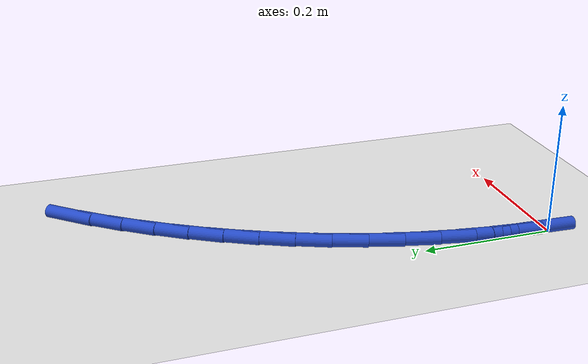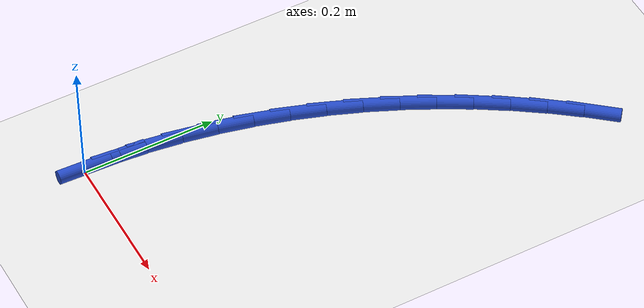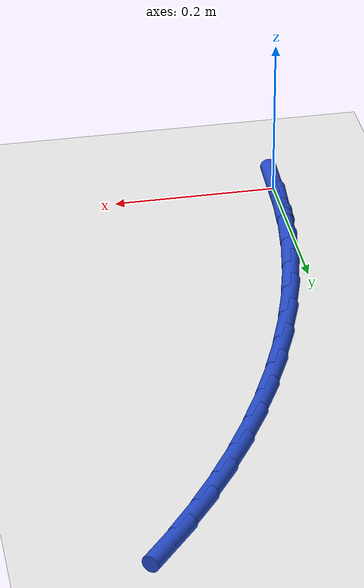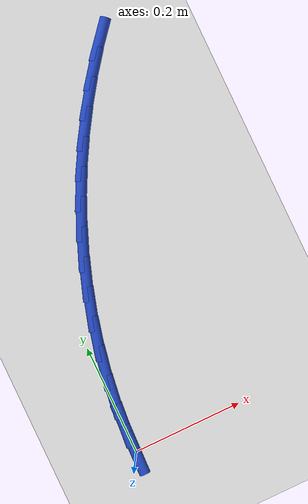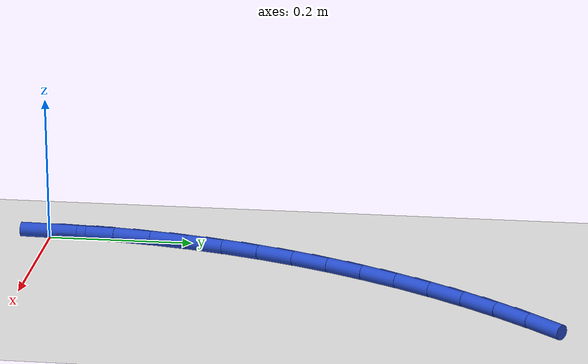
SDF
<sdf version="1.6">
 <world name="default">
  <model name="ground_plane">
   <static>1</static>
   <link name="link">
    <collision name="collision">
     <geometry><plane><normal>0 0 1</normal><size>100 100</size></plane></geometry>
     <surface><friction><ode><mu>100</mu><mu2>50</mu2></ode></friction></surface>
    </collision>
    <visual name="visual">
     <cast_shadows>0</cast_shadows>
     <geometry><plane><normal>0 0 1</normal><size>100 100</size></plane></geometry>
     <material>
      <script><uri>file://media/materials/scripts/gazebo.material</uri><name>Gazebo/WhiteGlow</name></script>
     </material>
    </visual>
   </link>
  </model>
  <model name="line">
   <link name="link_1">
    <pose>0.001967549268390317 0.05304863308783272 0.01 0 1.57 1.4812936571090756</pose>
    <collision name="collision">
     <geometry><cylinder><radius>0.01</radius><length>0.08</length></cylinder></geometry>
    </collision>
    <visual name="visual">
     <material>
      <script><name>Gazebo/Blue</name><uri>file://media/materials/scripts/gazebo.material</uri></script>
     </material>
     <geometry><cylinder><radius>0.01</radius><length>0.08</length></cylinder></geometry>
    </visual>
   </link>
   <link name="link_2">
    <pose>0.006696925144838647 0.10574807280864275 0.01 0 1.57 1.4297950125590235</pose>
    <collision name="collision">
     <geometry><cylinder><radius>0.01</radius><length>0.08</length></cylinder></geometry>
    </collision>
    <visual name="visual">
     <material>
      <script><name>Gazebo/Blue</name><uri>file://media/materials/scripts/gazebo.material</uri></script>
     </material>
     <geometry><cylinder><radius>0.01</radius><length>0.08</length></cylinder></geometry>
    </visual>
   </link>
   <link name="link_3">
    <pose>0.014115377778339266 0.15801158812325491 0.01 0 1.57 1.3792314947290811</pose>
    <collision name="collision">
     <geometry><cylinder><radius>0.01</radius><length>0.08</length></cylinder></geometry>
    </collision>
    <visual name="visual">
     <material>
      <script><name>Gazebo/Blue</name><uri>file://media/materials/scripts/gazebo.material</uri></script>
     </material>
     <geometry><cylinder><radius>0.01</radius><length>0.08</length></cylinder></geometry>
    </visual>
   </link>
   <link name="link_4">
    <pose>0.02415015731788651 0.20975244799249412 0.01 0 1.57 1.329585637507284</pose>
    <collision name="collision">
     <geometry><cylinder><radius>0.01</radius><length>0.08</length></cylinder></geometry>
    </collision>
    <visual name="visual">
     <material>
      <script><name>Gazebo/Blue</name><uri>file://media/materials/scripts/gazebo.material</uri></script>
     </material>
     <geometry><cylinder><radius>0.01</radius><length>0.08</length></cylinder></geometry>
    </visual>
   </link>
   <link name="link_5">
    <pose>0.03672851391247468 0.26088392137718536 0.01 0 1.57 1.2808212927465041</pose>
    <collision name="collision">
     <geometry><cylinder><radius>0.01</radius><length>0.08</length></cylinder></geometry>
    </collision>
    <visual name="visual">
     <material>
      <script><name>Gazebo/Blue</name><uri>file://media/materials/scripts/gazebo.material</uri></script>
     </material>
     <geometry><cylinder><radius>0.01</radius><length>0.08</length></cylinder></geometry>
    </visual>
   </link>
   <link name="link_6">
    <pose>0.05177769771109808 0.31131927723815334 0.01 0 1.57 1.2328861283281707</pose>
    <collision name="collision">
     <geometry><cylinder><radius>0.01</radius><length>0.08</length></cylinder></geometry>
    </collision>
    <visual name="visual">
     <material>
      <script><name>Gazebo/Blue</name><uri>file://media/materials/scripts/gazebo.material</uri></script>
     </material>
     <geometry><cylinder><radius>0.01</radius><length>0.08</length></cylinder></geometry>
    </visual>
   </link>
   <link name="link_7">
    <pose>0.0692249588627511 0.3609717845362233 0.01 0 1.57 1.1857140671375428</pose>
    <collision name="collision">
     <geometry><cylinder><radius>0.01</radius><length>0.08</length></cylinder></geometry>
    </collision>
    <visual name="visual">
     <material>
      <script><name>Gazebo/Blue</name><uri>file://media/materials/scripts/gazebo.material</uri></script>
     </material>
     <geometry><cylinder><radius>0.01</radius><length>0.08</length></cylinder></geometry>
    </visual>
   </link>
   <link name="link_8">
    <pose>0.08899754751642797 0.40975471223221976 0.01 0 1.57 1.139227578575083</pose>
    <collision name="collision">
     <geometry><cylinder><radius>0.01</radius><length>0.08</length></cylinder></geometry>
    </collision>
    <visual name="visual">
     <material>
      <script><name>Gazebo/Blue</name><uri>file://media/materials/scripts/gazebo.material</uri></script>
     </material>
     <geometry><cylinder><radius>0.01</radius><length>0.08</length></cylinder></geometry>
    </visual>
   </link>
   <link name="link_9">
    <pose>0.11102271382112305 0.4575813292869679 0.01 0 1.57 1.0933637999976948</pose>
    <collision name="collision">
     <geometry><cylinder><radius>0.01</radius><length>0.08</length></cylinder></geometry>
    </collision>
    <visual name="visual">
     <material>
      <script><name>Gazebo/Blue</name><uri>file://media/materials/scripts/gazebo.material</uri></script>
     </material>
     <geometry><cylinder><radius>0.01</radius><length>0.08</length></cylinder></geometry>
    </visual>
   </link>
   <link name="link_10">
    <pose>0.13522712310421153 0.5043665289543939 0.01 0 1.57 1.0481896145040341</pose>
    <collision name="collision">
     <geometry><cylinder><radius>0.01</radius><length>0.08</length></cylinder></geometry>
    </collision>
    <visual name="visual">
     <material>
      <script><name>Gazebo/Blue</name><uri>file://media/materials/scripts/gazebo.material</uri></script>
     </material>
     <geometry><cylinder><radius>0.01</radius><length>0.08</length></cylinder></geometry>
    </visual>
   </link>
   <link name="link_11">
    <pose>0.1615337368591486 0.5500354915771524 0.01 0 1.57 1.0036886585377973</pose>
    <collision name="collision">
     <geometry><cylinder><radius>0.01</radius><length>0.08</length></cylinder></geometry>
    </collision>
    <visual name="visual">
     <material>
      <script><name>Gazebo/Blue</name><uri>file://media/materials/scripts/gazebo.material</uri></script>
     </material>
     <geometry><cylinder><radius>0.01</radius><length>0.08</length></cylinder></geometry>
    </visual>
   </link>
   <link name="link_12">
    <pose>0.1898640709527227 0.5945174126049747 0.01 0 1.57 0.9597799397234799</pose>
    <collision name="collision">
     <geometry><cylinder><radius>0.01</radius><length>0.08</length></cylinder></geometry>
    </collision>
    <visual name="visual">
     <material>
      <script><name>Gazebo/Blue</name><uri>file://media/materials/scripts/gazebo.material</uri></script>
     </material>
     <geometry><cylinder><radius>0.01</radius><length>0.08</length></cylinder></geometry>
    </visual>
   </link>
   <link name="link_13">
    <pose>0.22013963794750374 0.6377414966647833 0.01 0 1.57 0.9163759580760344</pose>
    <collision name="collision">
     <geometry><cylinder><radius>0.01</radius><length>0.08</length></cylinder></geometry>
    </collision>
    <visual name="visual">
     <material>
      <script><name>Gazebo/Blue</name><uri>file://media/materials/scripts/gazebo.material</uri></script>
     </material>
     <geometry><cylinder><radius>0.01</radius><length>0.08</length></cylinder></geometry>
    </visual>
   </link>
   <link name="link_14">
    <pose>0.25228195040606166 0.6796369483835005 0.01 0 1.57 0.8733842194645016</pose>
    <collision name="collision">
     <geometry><cylinder><radius>0.01</radius><length>0.08</length></cylinder></geometry>
    </collision>
    <visual name="visual">
     <material>
      <script><name>Gazebo/Blue</name><uri>file://media/materials/scripts/gazebo.material</uri></script>
     </material>
     <geometry><cylinder><radius>0.01</radius><length>0.08</length></cylinder></geometry>
    </visual>
   </link>
   <link name="link_130">
    <pose>-6.071532165918825e-17 1.3877787807814457e-17 0.01 0 1.57 1.533499975673375</pose>
    <collision name="collision">
     <geometry><cylinder><radius>0.01</radius><length>0.08</length></cylinder></geometry>
    </collision>
    <visual name="visual">
     <material>
      <script><name>Gazebo/Blue</name><uri>file://media/materials/scripts/gazebo.material</uri></script>
     </material>
     <geometry><cylinder><radius>0.01</radius><length>0.08</length></cylinder></geometry>
    </visual>
   </link>
   <link name="link_131">
    <pose>0.0019783681606751757 0.053019952381955435 0.01 0 1.57 1.5334999756733751</pose>
    <collision name="collision">
     <geometry><cylinder><radius>0.01</radius><length>0.08</length></cylinder></geometry>
    </collision>
    <visual name="visual">
     <material>
      <script><name>Gazebo/Blue</name><uri>file://media/materials/scripts/gazebo.material</uri></script>
     </material>
     <geometry><cylinder><radius>0.01</radius><length>0.08</length></cylinder></geometry>
    </visual>
   </link>
  </model>
 </world>
</sdf>
